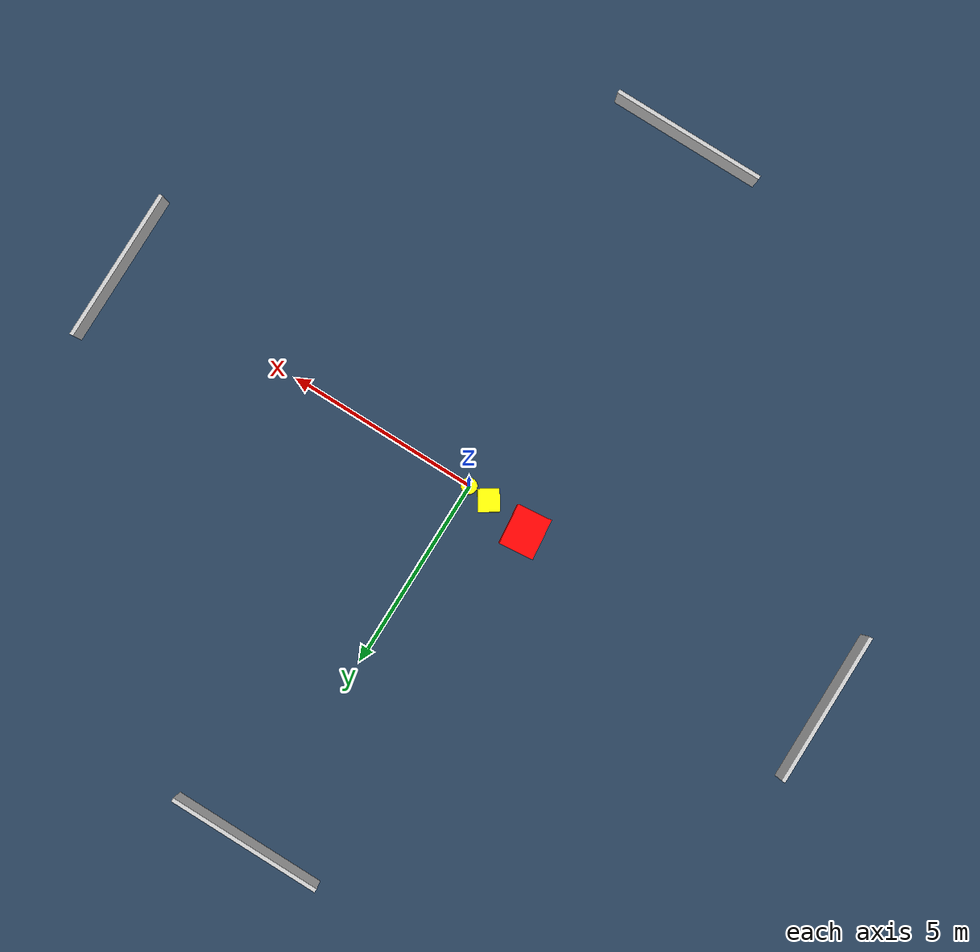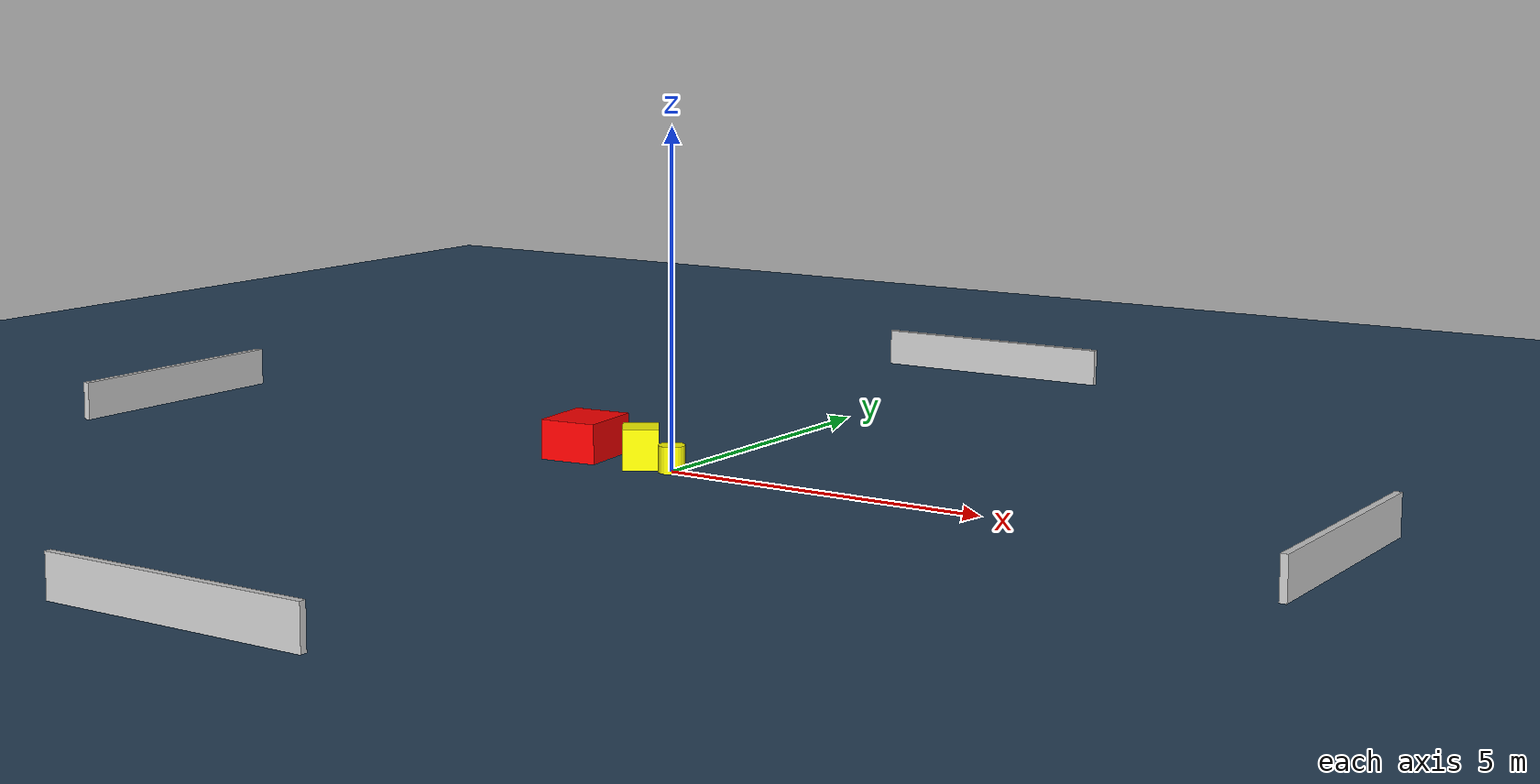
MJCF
<?xml version="1.0" ?>
<mujoco model="generated_environment">
  <option timestep="0.01" integrator="RK4" cone="elliptic"/>
  <default>
    <geom density="1"/>
  </default>
  <asset>
    <texture builtin="gradient" height="3072" name="skybox" rgb1="0.3 0.5 0.7" rgb2="0 0 0" type="skybox" width="512"/>
    <texture builtin="checker" height="300" name="groundplane" rgb1="0.2 0.3 0.4" rgb2="0.1 0.2 0.3" type="2d" width="300"/>
    <material name="groundplane" reflectance="0.2" texrepeat="5 5" texture="groundplane"/>
  </asset>
  <worldbody>
    <light dir="0 0 -1" directional="true" pos="0 0 1.5"/>
    <geom condim="3" friction="0.5 0.005 0.001" material="groundplane" name="floor" pos="0 0 0" size="0 0 0.05" type="plane"/>
    <body name="walls">
      <geom name="wall_1" condim="4" pos="-10.0 0.0 0.3" rgba="0.800000011920929 0.800000011920929 0.800000011920929 1.0" size="0.05 2.0 0.3" type="box"/>
      <geom name="wall_2" condim="4" pos="10.0 0.0 0.3" rgba="0.800000011920929 0.800000011920929 0.800000011920929 1.0" size="0.05 2.0 0.3" type="box"/>
      <geom name="wall_3" condim="4" pos="0.0 -10.0 0.3" rgba="0.800000011920929 0.800000011920929 0.800000011920929 1.0" size="2.0 0.05 0.3" type="box"/>
      <geom name="wall_4" condim="4" pos="0.0 10.0 0.3" rgba="0.800000011920929 0.800000011920929 0.800000011920929 1.0" size="2.0 0.05 0.3" type="box"/>
    </body>
    <body name="robot">
      <joint name="joint_x" type="slide" pos="0 0 0" axis="1 0 0"/>
      <joint name="joint_y" type="slide" pos="0 0 0" axis="0 1 0"/>
      <geom name="robot" type="cylinder" pos="0.0 0.0 0.2" size="0.2 0.2 0.0" mass="5.0" friction="1.0 0.005 0.0001" condim="4" rgba="1.0 1.0 0.0 1.0"/>
    </body>
    <body name="obstacle_1_movable">
      <geom name="obstacle_1_movable" condim="4" pos="-0.5846821025325276 0.04972209316892629 0.3" euler="0 0 213.8899222856552" friction="0.0 0.005 0.001" rgba="1.0 1.0 0.0 1.0" size="0.26694471871829806 0.2814182550440275 0.3" type="box" mass="0.1"/>
      <joint type="free"/>
    </body>
    <body name="obstacle_2_static">
      <geom name="obstacle_2_static" condim="4" pos="-1.7230353745161702 0.2260921774167709 0.3" euler="0 0 6.0762078377884565" friction="0.0 0.005 0.001" rgba="1.0 0.0 0.0 1.0" size="0.444745790429233 0.5229608270921211 0.3" type="box"/>
    </body>
  </worldbody>
  <actuator>
    <motor name="actuator_x" joint="joint_x" gear="1" ctrlrange="-1 1"/>
    <motor name="actuator_y" joint="joint_y" gear="1" ctrlrange="-1 1"/>
  </actuator>
</mujoco>
